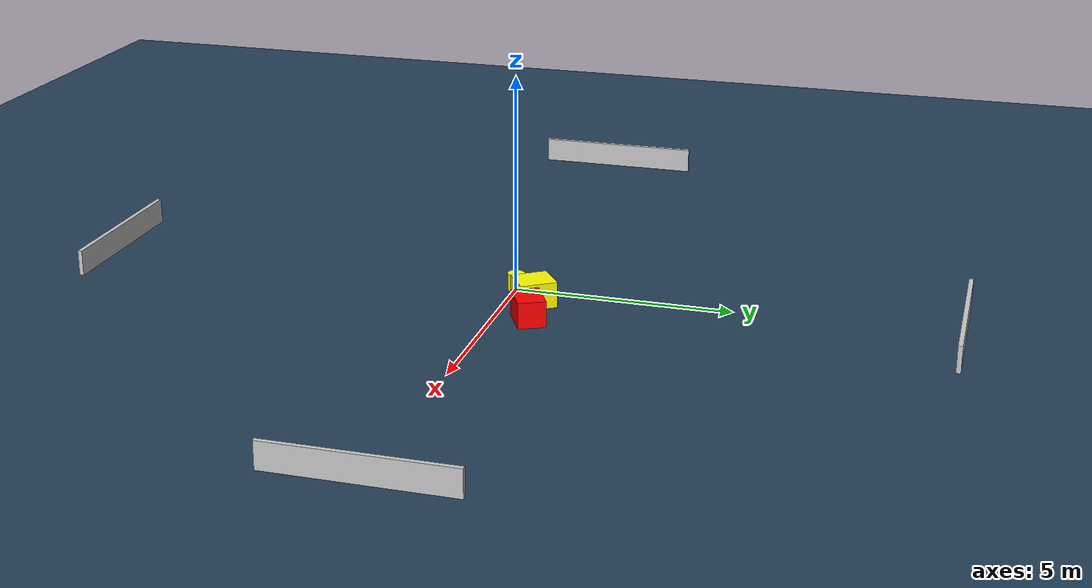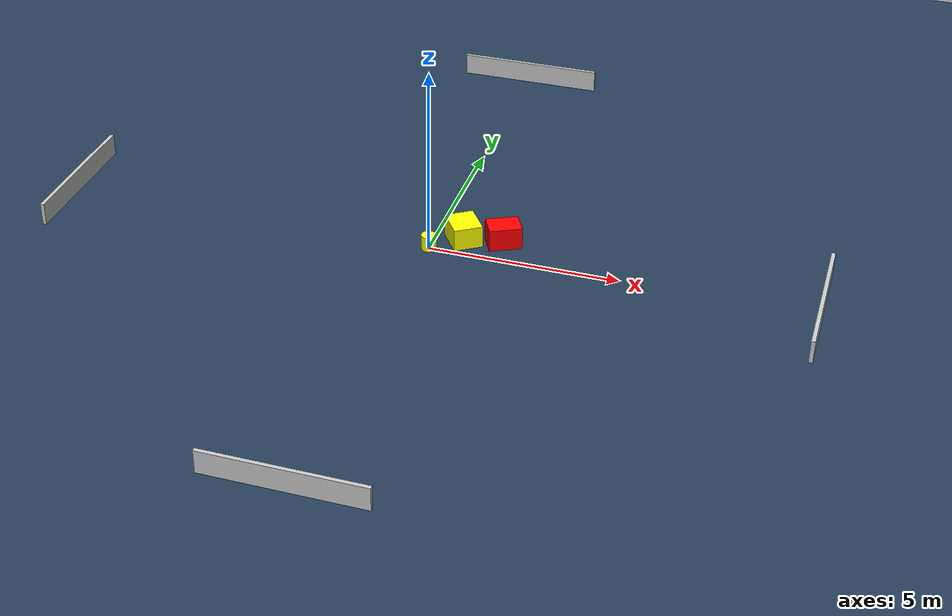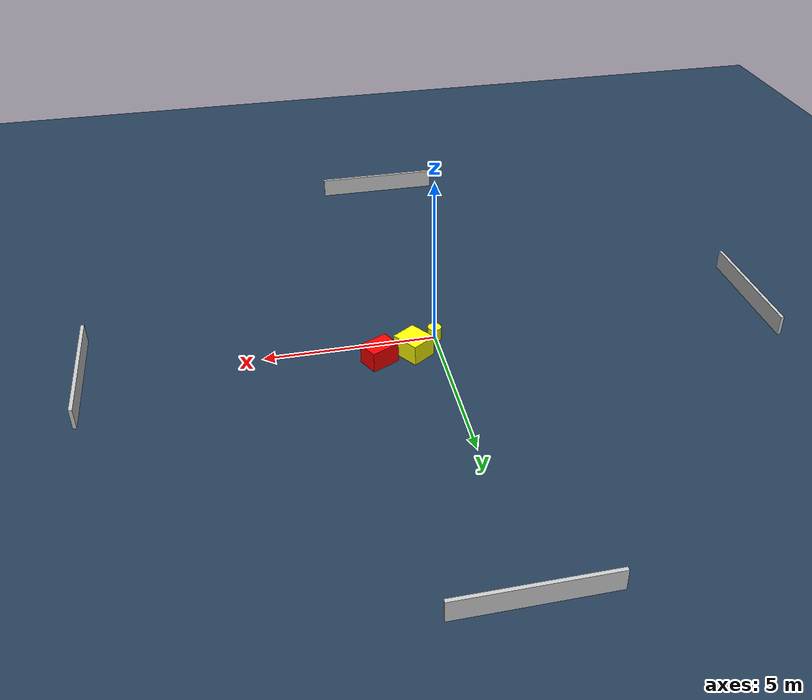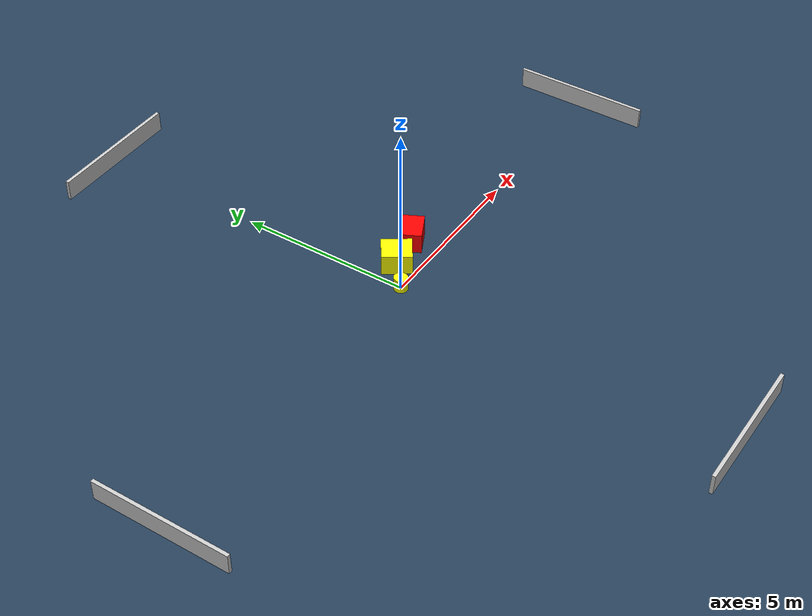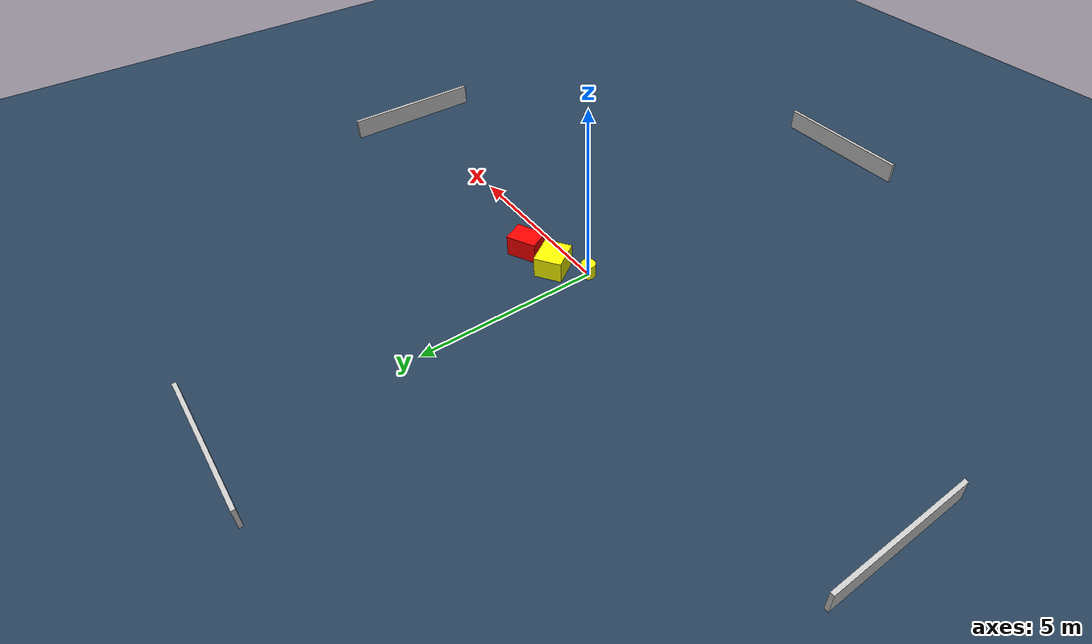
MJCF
<?xml version="1.0" ?>
<mujoco model="generated_environment">
  <option timestep="0.01" integrator="RK4" cone="elliptic"/>
  <default>
    <geom density="1"/>
  </default>
  <asset>
    <texture builtin="gradient" height="3072" name="skybox" rgb1="0.3 0.5 0.7" rgb2="0 0 0" type="skybox" width="512"/>
    <texture builtin="checker" height="300" name="groundplane" rgb1="0.2 0.3 0.4" rgb2="0.1 0.2 0.3" type="2d" width="300"/>
    <material name="groundplane" reflectance="0.2" texrepeat="5 5" texture="groundplane"/>
  </asset>
  <worldbody>
    <light dir="0 0 -1" directional="true" pos="0 0 1.5"/>
    <geom condim="3" friction="0.5 0.005 0.001" material="groundplane" name="floor" pos="0 0 0" size="0 0 0.05" type="plane"/>
    <body name="walls">
      <geom name="wall_1" condim="4" pos="-10.0 0.0 0.3" rgba="0.800000011920929 0.800000011920929 0.800000011920929 1.0" size="0.05 2.0 0.3" type="box"/>
      <geom name="wall_2" condim="4" pos="10.0 0.0 0.3" rgba="0.800000011920929 0.800000011920929 0.800000011920929 1.0" size="0.05 2.0 0.3" type="box"/>
      <geom name="wall_3" condim="4" pos="0.0 -10.0 0.3" rgba="0.800000011920929 0.800000011920929 0.800000011920929 1.0" size="2.0 0.05 0.3" type="box"/>
      <geom name="wall_4" condim="4" pos="0.0 10.0 0.3" rgba="0.800000011920929 0.800000011920929 0.800000011920929 1.0" size="2.0 0.05 0.3" type="box"/>
    </body>
    <body name="robot">
      <joint name="joint_x" type="slide" pos="0 0 0" axis="1 0 0"/>
      <joint name="joint_y" type="slide" pos="0 0 0" axis="0 1 0"/>
      <geom name="robot" type="cylinder" pos="0.0 0.0 0.2" size="0.2 0.2 0.0" mass="5.0" friction="1.0 0.005 0.0001" condim="4" rgba="1.0 1.0 0.0 1.0"/>
    </body>
    <body name="obstacle_1_movable">
      <geom name="obstacle_1_movable" condim="4" pos="0.7426261963732274 0.6249162826196801 0.3" euler="0 0 34.30049708492439" friction="0.0 0.005 0.001" rgba="1.0 1.0 0.0 1.0" size="0.3832681604315789 0.42725202962988756 0.3" type="box" mass="0.1"/>
      <joint type="free"/>
    </body>
    <body name="obstacle_2_static">
      <geom name="obstacle_2_static" condim="4" pos="1.7679115645823635 0.7959245318940291 0.3" euler="0 0 26.778791884832636" friction="0.0 0.005 0.001" rgba="1.0 0.0 0.0 1.0" size="0.4299583330428247 0.3144095210725387 0.3" type="box"/>
    </body>
  </worldbody>
  <actuator>
    <motor name="actuator_x" joint="joint_x" gear="1" ctrlrange="-1 1"/>
    <motor name="actuator_y" joint="joint_y" gear="1" ctrlrange="-1 1"/>
  </actuator>
</mujoco>
